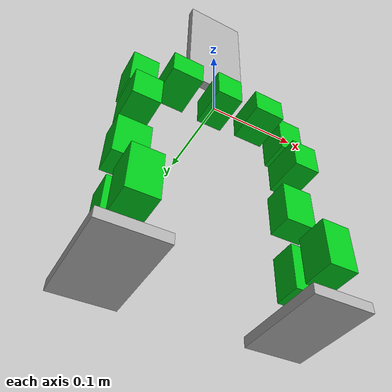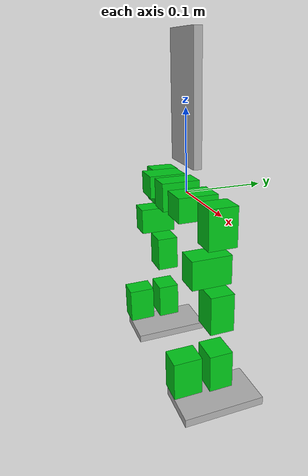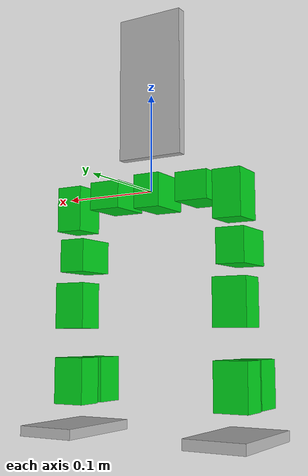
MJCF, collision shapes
<mujoco model="phonebot">
  <compiler angle="radian" balanceinertia="true" />
  <asset>
    <mesh name="motor_mesh" file="/media/hrc/T7_UBUNTU_ONLY/Codesign_ChopstickBot_all_files/reference/xm430_motor/good_conversion_stl/XL-430_new_coordinate_on_axis.STL" scale="0.001000 0.001000 0.001000" />
    </asset>
  <worldbody>
    <body name="base_motor_link" pos="0.000000 0.000000 0.000000" quat="1.000000 0.000000 0.000000 0.000000">
      <freejoint name="floating_base" />
      <inertial pos="0.000000 -0.012000 0.000000" mass="0.065000" diaginertia="0.000017973854 0.000010661354 0.000016111875" />
      <geom type="mesh" mesh="motor_mesh" rgba="0.89804 0.91765 0.92941 1.0" contype="0" conaffinity="0" group="0" />
      <geom type="box" size="0.014250 0.023250 0.017000" pos="0.000000 -0.012000 0.000000" rgba="0.0 0.8 0.1 1.0" group="1" />
      <body name="l_hip_pitch" pos="-0.050000 0.000000 0.000000" quat="0.707107 0.000000 -0.707107 0.000000">
        <inertial pos="0.000000 -0.012000 0.000000" mass="0.065000" diaginertia="0.000017973854 0.000010661354 0.000016111875" />
        <geom type="mesh" mesh="motor_mesh" rgba="0.89804 0.91765 0.92941 1.0" contype="0" conaffinity="0" group="0" />
        <geom type="box" size="0.014250 0.023250 0.017000" pos="0.000000 -0.012000 0.000000" rgba="0.0 0.8 0.1 1.0" group="1" />
        <body name="l_hip_pitch_out" pos="0.000000 0.000000 0.000000" quat="1.000000 0.000000 0.000000 0.000000">
          <inertial pos="0.000000 0.000000 0.000000" mass="0.001000" diaginertia="0.000000016667 0.000000016667 0.000000016667" />
          <joint name="l_hip_pitch_joint" type="hinge" axis="1.000000 0.000000 0.000000" pos="-0.000000 -0.000000 -0.000000" range="-3.14159 3.14159" />
          <body name="l_hip_roll" pos="0.000000 0.000000 0.040000" quat="0.500000 -0.500000 -0.500000 -0.500000">
            <inertial pos="0.000000 -0.012000 0.000000" mass="0.065000" diaginertia="0.000017973854 0.000010661354 0.000016111875" />
            <geom type="mesh" mesh="motor_mesh" rgba="0.89804 0.91765 0.92941 1.0" contype="0" conaffinity="0" group="0" />
            <geom type="box" size="0.014250 0.023250 0.017000" pos="0.000000 -0.012000 0.000000" rgba="0.0 0.8 0.1 1.0" group="1" />
            <body name="l_hip_roll_out" pos="0.000000 0.000000 0.000000" quat="1.000000 0.000000 0.000000 0.000000">
              <inertial pos="0.000000 0.000000 0.000000" mass="0.001000" diaginertia="0.000000016667 0.000000016667 0.000000016667" />
              <joint name="l_hip_roll_joint" type="hinge" axis="1.000000 0.000000 0.000000" pos="-0.000000 -0.000000 -0.000000" range="-3.14159 3.14159" />
              <body name="l_hip_thigh" pos="0.000000 -0.060000 0.000000" quat="0.707107 0.707107 0.000000 0.000000">
                <inertial pos="0.000000 -0.012000 0.000000" mass="0.065000" diaginertia="0.000017973854 0.000010661354 0.000016111875" />
                <geom type="mesh" mesh="motor_mesh" rgba="0.89804 0.91765 0.92941 1.0" contype="0" conaffinity="0" group="0" />
                <geom type="box" size="0.014250 0.023250 0.017000" pos="0.000000 -0.012000 0.000000" rgba="0.0 0.8 0.1 1.0" group="1" />
                <body name="l_hip_thigh_out" pos="0.000000 0.000000 0.000000" quat="1.000000 0.000000 0.000000 0.000000">
                  <inertial pos="0.000000 0.000000 0.000000" mass="0.001000" diaginertia="0.000000016667 0.000000016667 0.000000016667" />
                  <joint name="l_hip_thigh_joint" type="hinge" axis="0.000000 1.000000 0.000000" pos="-0.000000 -0.000000 -0.000000" range="-3.14159 3.14159" />
                  <body name="l_hip_calf_joint_frame" pos="0.000000 0.000000 0.040000" quat="1.000000 0.000000 0.000000 0.000000">
                    <inertial pos="0.000000 0.000000 0.000000" mass="0.001000" diaginertia="0.000000016667 0.000000016667 0.000000016667" />
                    <joint name="l_hip_calf_joint" type="hinge" axis="0.000000 0.000000 1.000000" range="-3.14159 3.14159" />
                    <body name="l_hip_calf" pos="0.000000 0.000000 0.000000" quat="0.500000 -0.500000 0.500000 -0.500000">
                      <inertial pos="0.000000 -0.012000 0.000000" mass="0.065000" diaginertia="0.000017973854 0.000010661354 0.000016111875" />
                      <geom type="mesh" mesh="motor_mesh" rgba="0.89804 0.91765 0.92941 1.0" contype="0" conaffinity="0" group="0" />
                      <geom type="box" size="0.014250 0.023250 0.017000" pos="0.000000 -0.012000 0.000000" rgba="0.0 0.8 0.1 1.0" group="1" />
                      <body name="l_ankle_pitch_joint_frame" pos="0.000000 -0.100000 0.000000" quat="1.000000 0.000000 0.000000 0.000000">
                        <inertial pos="0.000000 0.000000 0.000000" mass="0.001000" diaginertia="0.000000016667 0.000000016667 0.000000016667" />
                        <joint name="l_ankle_pitch_joint" type="hinge" axis="0.000000 0.000000 1.000000" range="-3.14159 3.14159" />
                        <body name="l_ankle_pitch" pos="0.000000 0.000000 0.000000" quat="0.000000 0.000000 0.000000 1.000000">
                          <inertial pos="0.000000 -0.012000 0.000000" mass="0.065000" diaginertia="0.000017973854 0.000010661354 0.000016111875" />
                          <geom type="mesh" mesh="motor_mesh" rgba="0.89804 0.91765 0.92941 1.0" contype="0" conaffinity="0" group="0" />
                          <geom type="box" size="0.014250 0.023250 0.017000" pos="0.000000 -0.012000 0.000000" rgba="0.0 0.8 0.1 1.0" group="1" />
                          <body name="l_ankle_roll_joint_frame" pos="-0.040000 0.000000 0.000000" quat="1.000000 0.000000 0.000000 0.000000">
                            <inertial pos="0.000000 0.000000 0.000000" mass="0.001000" diaginertia="0.000000016667 0.000000016667 0.000000016667" />
                            <joint name="l_ankle_roll_joint" type="hinge" axis="0.000000 0.000000 1.000000" range="-3.14159 3.14159" />
                            <body name="l_ankle_roll" pos="0.000000 0.000000 0.000000" quat="0.707107 0.000000 0.707107 0.000000">
                              <inertial pos="0.000000 -0.012000 0.000000" mass="0.065000" diaginertia="0.000017973854 0.000010661354 0.000016111875" />
                              <geom type="mesh" mesh="motor_mesh" rgba="0.89804 0.91765 0.92941 1.0" contype="0" conaffinity="0" group="0" />
                              <geom type="box" size="0.014250 0.023250 0.017000" pos="0.000000 -0.012000 0.000000" rgba="0.0 0.8 0.1 1.0" group="1" />
                              <body name="l_foot" pos="0.000000 0.035000 0.040000" quat="0.500000 0.500000 -0.500000 0.500000">
                                <inertial pos="0.000000 0.000000 0.000000" mass="0.050000" diaginertia="0.000015416667 0.000042083333 0.000056666667" />
                                <geom type="box" size="0.050000 0.030000 0.005000" pos="0.000000 0.000000 0.000000" rgba="0.7 0.7 0.7 1.0" group="0" />
                                </body>
                              </body>
                            </body>
                          </body>
                        </body>
                      </body>
                    </body>
                  </body>
                </body>
              </body>
            </body>
          </body>
        </body>
      <body name="r_hip_pitch" pos="0.050000 0.000000 0.000000" quat="0.707107 0.000000 0.707107 0.000000">
        <inertial pos="0.000000 -0.012000 0.000000" mass="0.065000" diaginertia="0.000017973854 0.000010661354 0.000016111875" />
        <geom type="mesh" mesh="motor_mesh" rgba="0.89804 0.91765 0.92941 1.0" contype="0" conaffinity="0" group="0" />
        <geom type="box" size="0.014250 0.023250 0.017000" pos="0.000000 -0.012000 0.000000" rgba="0.0 0.8 0.1 1.0" group="1" />
        <body name="r_hip_pitch_out" pos="0.000000 0.000000 0.000000" quat="1.000000 0.000000 0.000000 0.000000">
          <inertial pos="0.000000 0.000000 0.000000" mass="0.001000" diaginertia="0.000000016667 0.000000016667 0.000000016667" />
          <joint name="r_hip_pitch_joint" type="hinge" axis="-1.000000 0.000000 0.000000" pos="-0.000000 -0.000000 -0.000000" range="-3.14159 3.14159" />
          <body name="r_hip_roll" pos="-0.000000 0.000000 0.040000" quat="0.500000 -0.500000 0.500000 0.500000">
            <inertial pos="0.000000 -0.012000 0.000000" mass="0.065000" diaginertia="0.000017973854 0.000010661354 0.000016111875" />
            <geom type="mesh" mesh="motor_mesh" rgba="0.89804 0.91765 0.92941 1.0" contype="0" conaffinity="0" group="0" />
            <geom type="box" size="0.014250 0.023250 0.017000" pos="0.000000 -0.012000 0.000000" rgba="0.0 0.8 0.1 1.0" group="1" />
            <body name="r_hip_roll_out" pos="0.000000 0.000000 0.000000" quat="1.000000 0.000000 0.000000 0.000000">
              <inertial pos="0.000000 0.000000 0.000000" mass="0.001000" diaginertia="0.000000016667 0.000000016667 0.000000016667" />
              <joint name="r_hip_roll_joint" type="hinge" axis="-1.000000 0.000000 0.000000" pos="-0.000000 -0.000000 -0.000000" range="-3.14159 3.14159" />
              <body name="r_hip_thigh" pos="-0.000000 -0.060000 0.000000" quat="0.707107 0.707107 0.000000 0.000000">
                <inertial pos="0.000000 -0.012000 0.000000" mass="0.065000" diaginertia="0.000017973854 0.000010661354 0.000016111875" />
                <geom type="mesh" mesh="motor_mesh" rgba="0.89804 0.91765 0.92941 1.0" contype="0" conaffinity="0" group="0" />
                <geom type="box" size="0.014250 0.023250 0.017000" pos="0.000000 -0.012000 0.000000" rgba="0.0 0.8 0.1 1.0" group="1" />
                <body name="r_hip_thigh_out" pos="0.000000 0.000000 0.000000" quat="1.000000 0.000000 0.000000 0.000000">
                  <inertial pos="0.000000 0.000000 0.000000" mass="0.001000" diaginertia="0.000000016667 0.000000016667 0.000000016667" />
                  <joint name="r_hip_thigh_joint" type="hinge" axis="0.000000 1.000000 0.000000" pos="-0.000000 -0.000000 -0.000000" range="-3.14159 3.14159" />
                  <body name="r_hip_calf_joint_frame" pos="-0.000000 0.000000 0.040000" quat="1.000000 0.000000 0.000000 0.000000">
                    <inertial pos="0.000000 0.000000 0.000000" mass="0.001000" diaginertia="0.000000016667 0.000000016667 0.000000016667" />
                    <joint name="r_hip_calf_joint" type="hinge" axis="0.000000 0.000000 1.000000" range="-3.14159 3.14159" />
                    <body name="r_hip_calf" pos="-0.000000 0.000000 0.000000" quat="0.500000 -0.500000 -0.500000 0.500000">
                      <inertial pos="0.000000 -0.012000 0.000000" mass="0.065000" diaginertia="0.000017973854 0.000010661354 0.000016111875" />
                      <geom type="mesh" mesh="motor_mesh" rgba="0.89804 0.91765 0.92941 1.0" contype="0" conaffinity="0" group="0" />
                      <geom type="box" size="0.014250 0.023250 0.017000" pos="0.000000 -0.012000 0.000000" rgba="0.0 0.8 0.1 1.0" group="1" />
                      <body name="r_ankle_pitch_joint_frame" pos="-0.000000 -0.100000 0.000000" quat="1.000000 0.000000 0.000000 0.000000">
                        <inertial pos="0.000000 0.000000 0.000000" mass="0.001000" diaginertia="0.000000016667 0.000000016667 0.000000016667" />
                        <joint name="r_ankle_pitch_joint" type="hinge" axis="0.000000 0.000000 1.000000" range="-3.14159 3.14159" />
                        <body name="r_ankle_pitch" pos="-0.000000 0.000000 0.000000" quat="-0.000000 0.000000 0.000000 1.000000">
                          <inertial pos="0.000000 -0.012000 0.000000" mass="0.065000" diaginertia="0.000017973854 0.000010661354 0.000016111875" />
                          <geom type="mesh" mesh="motor_mesh" rgba="0.89804 0.91765 0.92941 1.0" contype="0" conaffinity="0" group="0" />
                          <geom type="box" size="0.014250 0.023250 0.017000" pos="0.000000 -0.012000 0.000000" rgba="0.0 0.8 0.1 1.0" group="1" />
                          <body name="r_ankle_roll_joint_frame" pos="0.040000 0.000000 0.000000" quat="1.000000 0.000000 0.000000 0.000000">
                            <inertial pos="0.000000 0.000000 0.000000" mass="0.001000" diaginertia="0.000000016667 0.000000016667 0.000000016667" />
                            <joint name="r_ankle_roll_joint" type="hinge" axis="0.000000 0.000000 1.000000" range="-3.14159 3.14159" />
                            <body name="r_ankle_roll" pos="-0.000000 0.000000 0.000000" quat="0.707107 0.000000 -0.707107 0.000000">
                              <inertial pos="0.000000 -0.012000 0.000000" mass="0.065000" diaginertia="0.000017973854 0.000010661354 0.000016111875" />
                              <geom type="mesh" mesh="motor_mesh" rgba="0.89804 0.91765 0.92941 1.0" contype="0" conaffinity="0" group="0" />
                              <geom type="box" size="0.014250 0.023250 0.017000" pos="0.000000 -0.012000 0.000000" rgba="0.0 0.8 0.1 1.0" group="1" />
                              <body name="r_foot" pos="-0.000000 0.035000 0.040000" quat="0.500000 0.500000 0.500000 -0.500000">
                                <inertial pos="0.000000 0.000000 0.000000" mass="0.050000" diaginertia="0.000015416667 0.000042083333 0.000056666667" />
                                <geom type="box" size="0.050000 0.030000 0.005000" pos="0.000000 0.000000 0.000000" rgba="0.7 0.7 0.7 1.0" group="0" />
                                </body>
                              </body>
                            </body>
                          </body>
                        </body>
                      </body>
                    </body>
                  </body>
                </body>
              </body>
            </body>
          </body>
        </body>
      <body name="trunk_link" pos="0.000000 0.000000 0.110000" quat="1.000000 0.000000 0.000000 0.000000">
        <joint name="base_to_trunk" type="hinge" axis="0.000000 0.000000 1.000000" range="-3.14159 3.14159" />
        <inertial pos="0.000000 0.000000 0.000000" mass="0.300000" diaginertia="0.000565000000 0.000685000000 0.000125000000" />
        <geom type="box" size="0.035000 0.005000 0.075000" pos="0.000000 0.000000 0.000000" rgba="0.7 0.7 0.7 1.0" group="0" />
        </body>
      </body>
    </worldbody>
  </mujoco>
